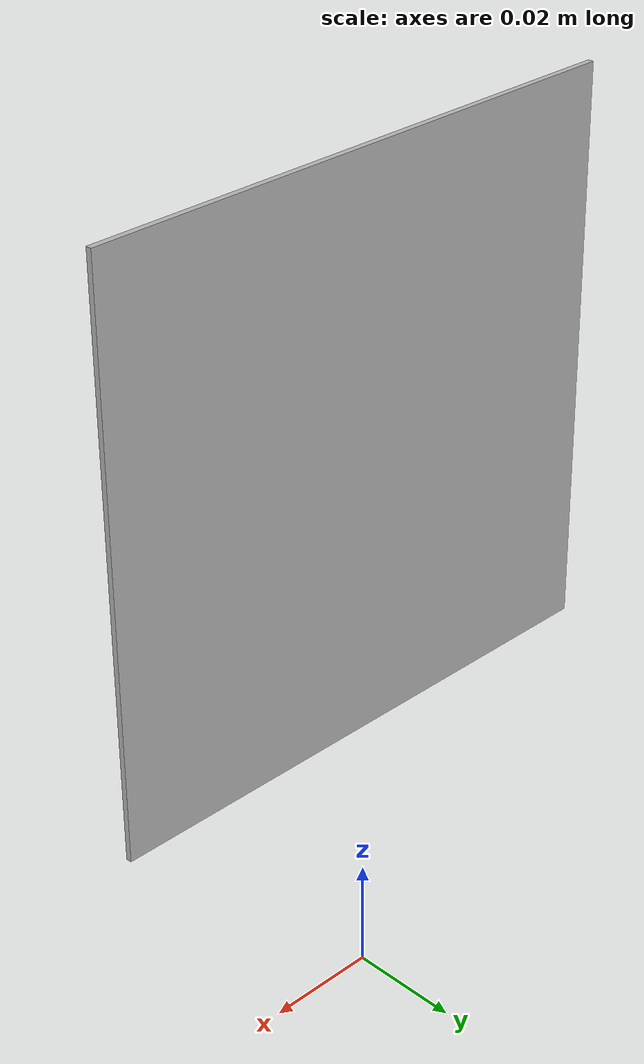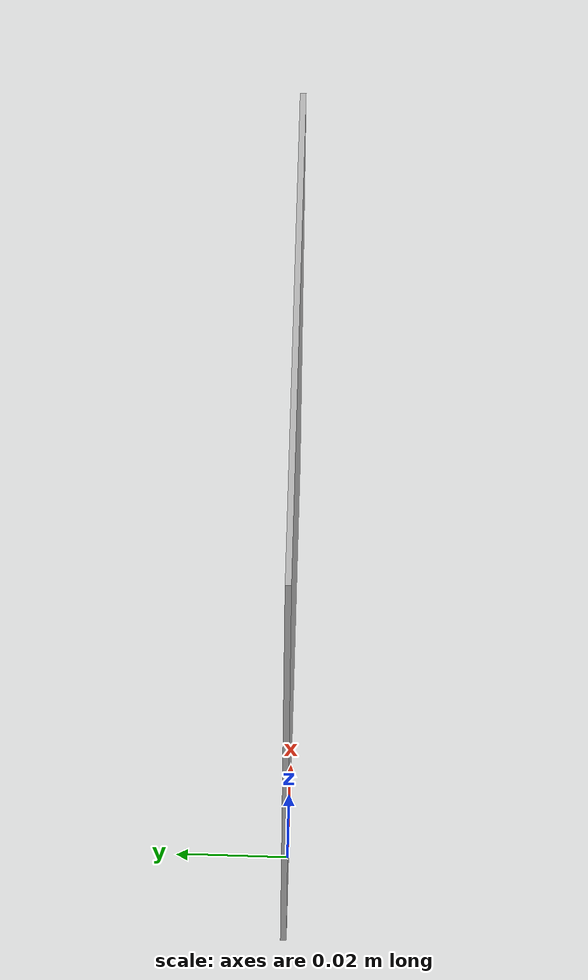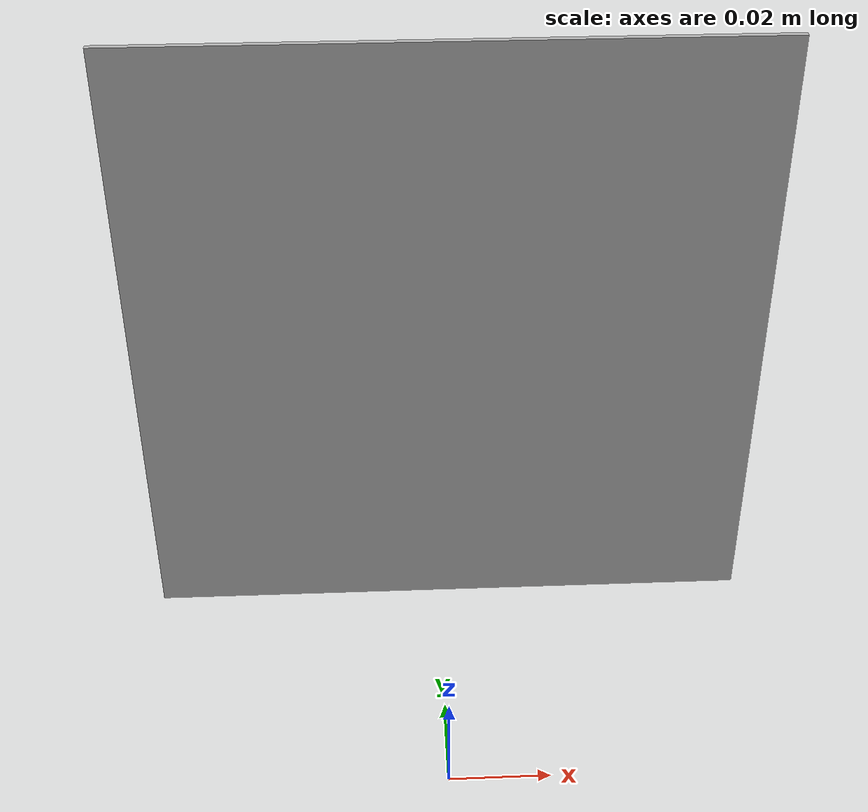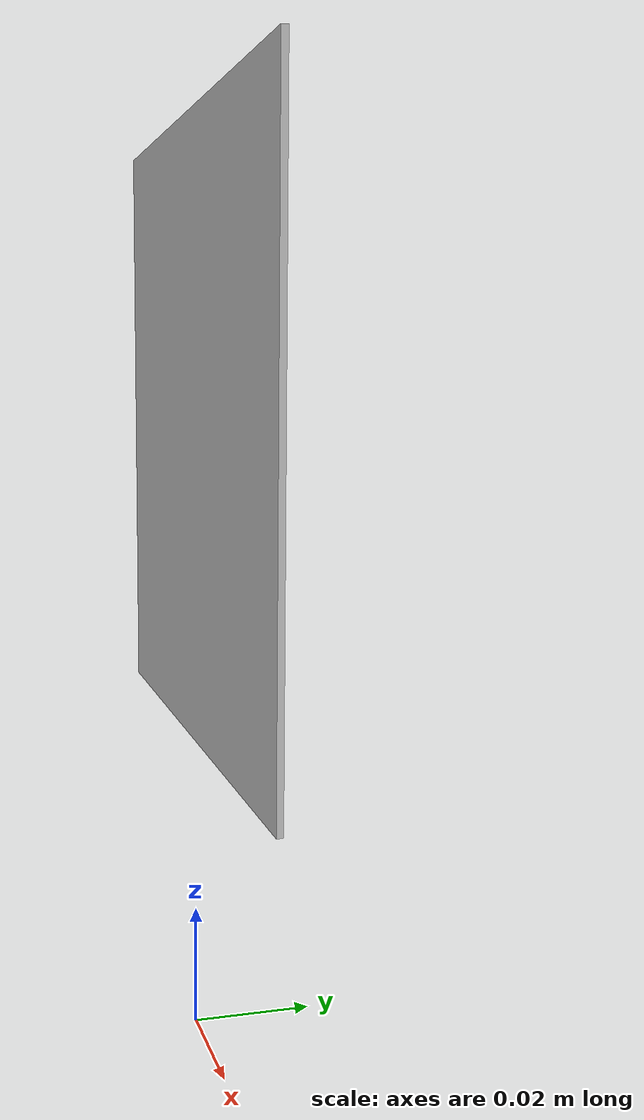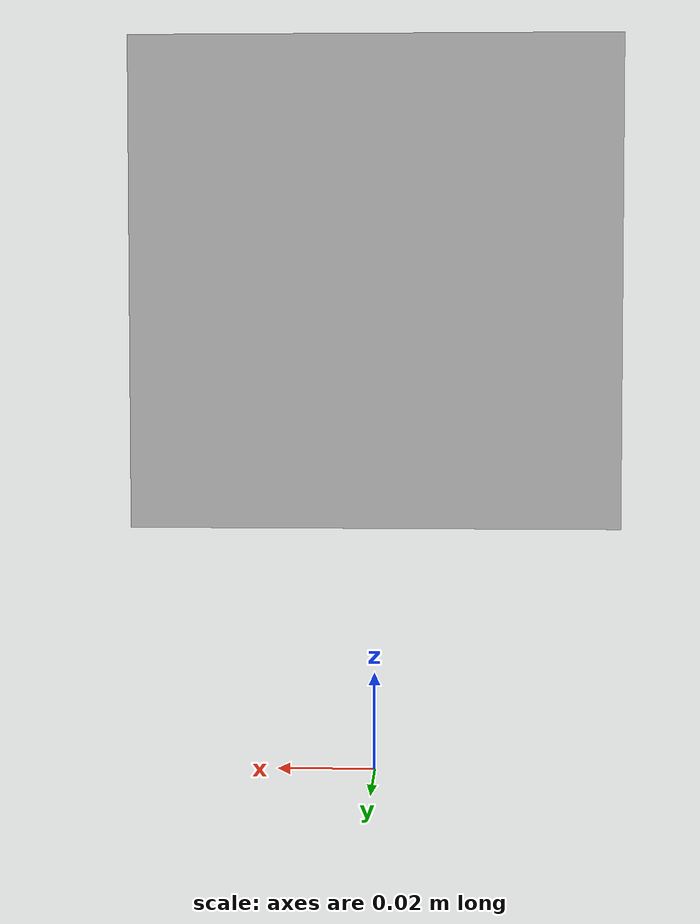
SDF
<?xml version="1.0" ?>
<sdf version="1.5">
  <model name="Tag0">
    <static>true</static>
    <link name="link">
      <pose>0 0 0.1 0 0 0</pose>
      <collision name="collision">
        <geometry>
          <box>
            <size>.1 0.001 .1</size>
          </box>
        </geometry>
      </collision>
      <visual name="visual">
        <cast_shadows>false</cast_shadows>
        <geometry>
          <box>
            <size>.1 0.001 .1</size>
          </box>
        </geometry>
        <material>
          <script>
            <uri>model://Tag0/materials/scripts</uri>
            <uri>model://Tag0/materials/textures</uri>
            <name>vrc/Tag0</name>
          </script>
        </material>
      </visual>
    </link>
  </model>
</sdf>
